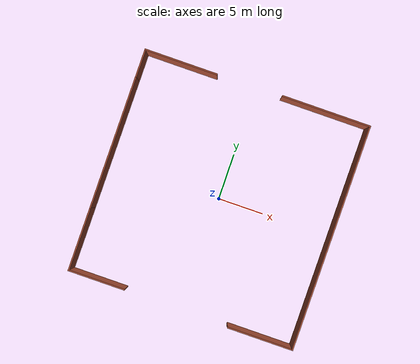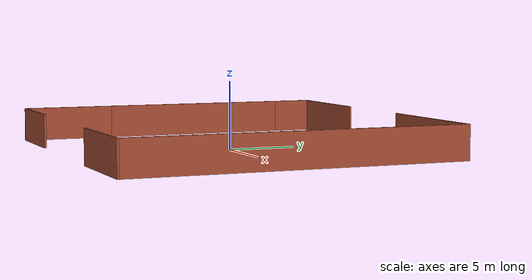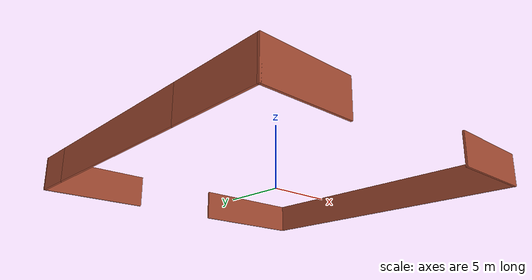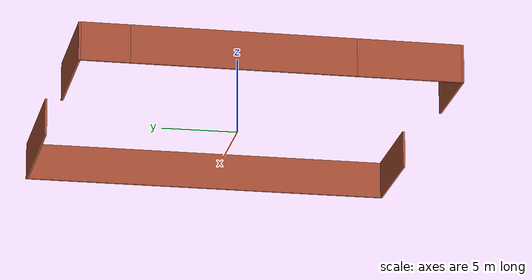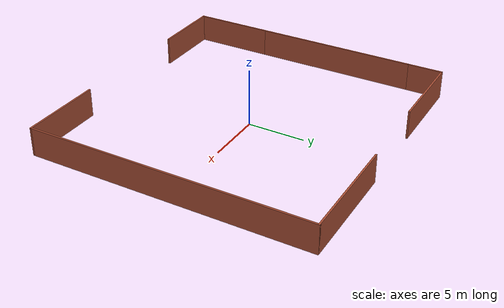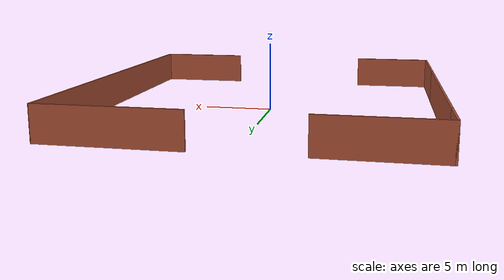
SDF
<?xml version='1.0'?>
<sdf version='1.7'>
  <model name='grass_with_wall'>
    <pose>0.059588 -0.024936 0 0 -0 0</pose>
    <link name='Wall_15'>
      <collision name='Wall_15_Collision'>
        <geometry>
          <box>
            <size>14.5 0.15 2.5</size>
          </box>
        </geometry>
        <pose>0 0 1.25 0 -0 0</pose>
      </collision>
      <visual name='Wall_15_Visual'>
        <pose>0 0 1.25 0 -0 0</pose>
        <geometry>
          <box>
            <size>14.5 0.15 2.5</size>
          </box>
        </geometry>
        <material>
          <script>
            <uri>file://media/materials/scripts/gazebo.material</uri>
            <name>Gazebo/Bricks</name>
          </script>
          <ambient>1 1 1 1</ambient>
        </material>
        <meta>
          <layer>0</layer>
        </meta>
      </visual>
      <pose>-12.3477 1.9018 0 0 -0 -1.5708</pose>
    </link>
    <link name='Wall_17'>
      <collision name='Wall_17_Collision'>
        <geometry>
          <box>
            <size>7 0.15 2.5</size>
          </box>
        </geometry>
        <pose>0 0 1.25 0 -0 0</pose>
      </collision>
      <visual name='Wall_17_Visual'>
        <pose>0 0 1.25 0 -0 0</pose>
        <geometry>
          <box>
            <size>7 0.15 2.5</size>
          </box>
        </geometry>
        <material>
          <script>
            <uri>file://media/materials/scripts/gazebo.material</uri>
            <name>Gazebo/Bricks</name>
          </script>
          <ambient>1 1 1 1</ambient>
        </material>
        <meta>
          <layer>0</layer>
        </meta>
      </visual>
      <pose>-12.3477 -8.6982 0 0 -0 -1.5708</pose>
    </link>
    <link name='Wall_18'>
      <collision name='Wall_18_Collision'>
        <geometry>
          <box>
            <size>6.25 0.15 2.5</size>
          </box>
        </geometry>
        <pose>0 0 1.25 0 -0 0</pose>
      </collision>
      <visual name='Wall_18_Visual'>
        <pose>0 0 1.25 0 -0 0</pose>
        <geometry>
          <box>
            <size>6.25 0.15 2.5</size>
          </box>
        </geometry>
        <material>
          <script>
            <uri>file://media/materials/scripts/gazebo.material</uri>
            <name>Gazebo/Bricks</name>
          </script>
          <ambient>1 1 1 1</ambient>
        </material>
        <meta>
          <layer>0</layer>
        </meta>
      </visual>
      <pose>-9.29772 -12.1232 0 0 -0 0</pose>
    </link>
    <link name='Wall_20'>
      <collision name='Wall_20_Collision'>
        <geometry>
          <box>
            <size>3.25 0.15 2.5</size>
          </box>
        </geometry>
        <pose>0 0 1.25 0 -0 0</pose>
      </collision>
      <visual name='Wall_20_Visual'>
        <pose>0 0 1.25 0 -0 0</pose>
        <geometry>
          <box>
            <size>3.25 0.15 2.5</size>
          </box>
        </geometry>
        <material>
          <script>
            <uri>file://media/materials/scripts/gazebo.material</uri>
            <name>Gazebo/Bricks</name>
          </script>
          <ambient>1 1 1 1</ambient>
        </material>
        <meta>
          <layer>0</layer>
        </meta>
      </visual>
      <pose>-12.3477 10.6268 0 0 -0 1.5708</pose>
    </link>
    <link name='Wall_21'>
      <collision name='Wall_21_Collision'>
        <geometry>
          <box>
            <size>8 0.15 2.5</size>
          </box>
        </geometry>
        <pose>0 0 1.25 0 -0 0</pose>
      </collision>
      <visual name='Wall_21_Visual'>
        <pose>0 0 1.25 0 -0 0</pose>
        <geometry>
          <box>
            <size>8 0.15 2.5</size>
          </box>
        </geometry>
        <material>
          <script>
            <uri>file://media/materials/scripts/gazebo.material</uri>
            <name>Gazebo/Bricks</name>
          </script>
          <ambient>1 1 1 1</ambient>
        </material>
        <meta>
          <layer>0</layer>
        </meta>
      </visual>
      <pose>-8.42272 12.1768 0 0 -0 0</pose>
    </link>
    <link name='Wall_24'>
      <collision name='Wall_24_Collision'>
        <geometry>
          <box>
            <size>9.75 0.15 2.5</size>
          </box>
        </geometry>
        <pose>0 0 1.25 0 -0 0</pose>
      </collision>
      <visual name='Wall_24_Visual'>
        <pose>0 0 1.25 0 -0 0</pose>
        <geometry>
          <box>
            <size>9.75 0.15 2.5</size>
          </box>
        </geometry>
        <material>
          <script>
            <uri>file://media/materials/scripts/gazebo.material</uri>
            <name>Gazebo/Bricks</name>
          </script>
          <ambient>0.996078 0.47451 0.0196078 1</ambient>
        </material>
        <meta>
          <layer>0</layer>
        </meta>
      </visual>
      <pose>7.54772 12.3 0 0 -0 0</pose>
    </link>
    <link name='Wall_25'>
      <collision name='Wall_25_Collision'>
        <geometry>
          <box>
            <size>24.75 0.15 2.5</size>
          </box>
        </geometry>
        <pose>0 0 1.25 0 -0 0</pose>
      </collision>
      <visual name='Wall_25_Visual'>
        <pose>0 0 1.25 0 -0 0</pose>
        <geometry>
          <box>
            <size>24.75 0.15 2.5</size>
          </box>
        </geometry>
        <material>
          <script>
            <uri>file://media/materials/scripts/gazebo.material</uri>
            <name>Gazebo/Bricks</name>
          </script>
          <ambient>1 1 1 1</ambient>
        </material>
        <meta>
          <layer>0</layer>
        </meta>
      </visual>
      <pose>12.3477 0 0 0 -0 -1.5708</pose>
    </link>
    <link name='Wall_26'>
      <collision name='Wall_26_Collision'>
        <geometry>
          <box>
            <size>7.25 0.15 2.5</size>
          </box>
        </geometry>
        <pose>0 0 1.25 0 -0 0</pose>
      </collision>
      <visual name='Wall_26_Visual'>
        <pose>0 0 1.25 0 -0 0</pose>
        <geometry>
          <box>
            <size>7.25 0.15 2.5</size>
          </box>
        </geometry>
        <material>
          <script>
            <uri>file://media/materials/scripts/gazebo.material</uri>
            <name>Gazebo/Bricks</name>
          </script>
          <ambient>1 1 1 1</ambient>
        </material>
        <meta>
          <layer>0</layer>
        </meta>
      </visual>
      <pose>8.79772 -12.3 0 0 -0 3.14159</pose>
    </link>
    <static>1</static>
  </model>
</sdf>
